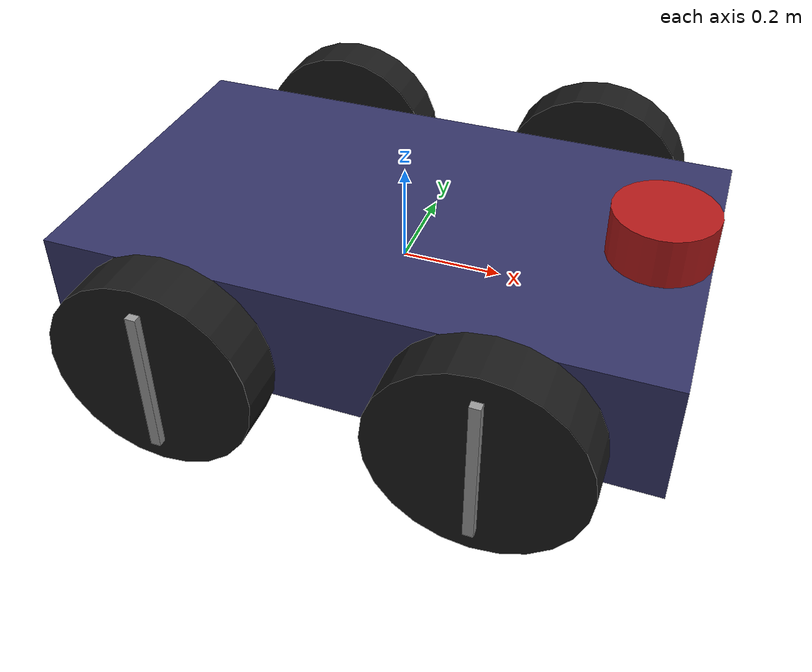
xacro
<?xml version="1.0" ?>
<robot name="robot" xmlns:xacro="http://www.ros.org/wiki/xacro">

    <xacro:include filename="$(find mid_project)/urdf/robot.gazebo" />

    <!-- Parameters -->
    <xacro:property name="chassis_mass" value="10" />
    <xacro:property name="pi" value="3.1415926535897931"/>

    <!-- Link - chassis -->
    <link name="link_chassis">
        <inertial>
            <mass value="${chassis_mass}" />
            <origin xyz="0 0 0.2" rpy="0 0 0" />
            <inertia ixx="1.5417" ixy="0" ixz="0" iyy="3.467" iyz="0" izz="4.742" />
        </inertial>

        <collision>
            <geometry>
                <box size="1.2 0.7 0.25" />
            </geometry>
        </collision>

        <visual>
            <geometry>
                <box size="1.2 0.7 0.25" />
            </geometry>
            <material name="DarkBlue">
                <color rgba="0.2 0.2 0.4 1" />
            </material>
        </visual>
    </link>

    <!-- Joint - caster wheel -->
    <joint name="joint_chassis_caster_wheel" type="fixed">
        <origin rpy="0 0 0" xyz="0.45 0 -0.1" />
        <child link="link_caster_wheel" />
        <parent link="link_chassis" />
        <joint_properties damping="1.0" friction="1.0" />
    </joint>
    <!-- Link - caster wheel -->
    <link name="link_caster_wheel">
        <inertial>
            <mass value="1" />
            <origin xyz="0 0 0" rpy="0 0 0" />
            <inertia ixx="0.002526666666667" ixy="0" ixz="0" iyy="0.002526666666667" iyz="0" izz="0.005"/>
        </inertial>

        <!-- Caster wheel support -->
        <collision>
            <origin rpy="0 0 0" xyz="0 0 -0.05" />
            <geometry>
                <sphere radius="0.05" />
            </geometry>
        </collision>
        <visual>
            <origin rpy="0 0 0" xyz="0 0 -0.05" />
            <geometry>
                <sphere radius="0.05" />
            </geometry>
            <material name="DarkBlue">
                <color rgba="0.2 0.2 0.4 1" />
            </material>
        </visual>

        <!-- Caster wheel -->
        <collision>
            <origin rpy="0 0 0" xyz="0 0 -0.09" />
            <geometry>
                <sphere radius="0.02" />
            </geometry>
        </collision>
        <visual>
            <origin rpy="0 0 0" xyz="0 0 -0.09" />
            <geometry>
                <sphere radius="0.02" />
            </geometry>
            <material name="Grey">
                <color rgba="0.6 0.6 0.6 1" />
            </material>
        </visual>
    </link>

    <!-- Joint - chassis / left front wheel -->
    <joint name="joint_chassis_left_front_wheel" type="continuous">
        <origin rpy="0 0 0" xyz="0.3 0.35 0" />
        <child link="link_left_front_wheel" />
        <parent link="link_chassis" />
        <axis rpy="0 0 0" xyz="0 1 0" />
        <limit effort="10000" velocity="1000" />
        <joint_properties damping="1.0" friction="1.0" />
    </joint>
    <!-- Link - left front wheel -->
    <link name="link_left_front_wheel">
        <inertial>
            <mass value="1" />
            <origin xyz="0 0 0" rpy="0 0 0" />
            <inertia ixx="0.002526666666667" ixy="0" ixz="0" iyy="0.002526666666667" iyz="0" izz="0.005"/>
        </inertial>

        <!-- Tires -->
        <collision>
            <origin rpy="${pi/2} 0 0" xyz="0 0.105 0" />
            <geometry>
                <cylinder length="0.1" radius="0.2"/>
            </geometry>
        </collision>
        <visual>
            <origin rpy="${pi/2} 0 0" xyz="0 0.105 0" />
            <geometry>
                <cylinder length="0.1" radius="0.2"/>
            </geometry>
            <material name="Black">
                <color rgba="0.1 0.1 0.1 1" />
            </material>
        </visual>

        <!-- Axle -->
        <collision>
            <origin rpy="${pi/2} 0 0" xyz="0 0.05 0" />
            <geometry>
                <cylinder length="0.1" radius="0.05"/>
            </geometry>
        </collision>
        <visual>
            <origin rpy="${pi/2} 0 0" xyz="0 0.05 0" />
            <geometry>
                <cylinder length="0.1" radius="0.05"/>
            </geometry>
            <material name="Grey">
                <color rgba="0.6 0.6 0.6 1" />
            </material>
        </visual>

        <!-- Hubcap -->
        <visual>
            <origin rpy="${pi/2} 0 0" xyz="0 0.16 0" />
            <geometry>
                <box size="0.02 0.3 0.02" />
            </geometry>
            <material name="Grey">
                <color rgba="0.6 0.6 0.6 1" />
            </material>
        </visual>
    </link>

    <!-- Joint - chassis / left rear wheel -->
    <joint name="joint_chassis_left_rear_wheel" type="continuous">
        <origin rpy="0 0 0" xyz="-0.3 0.35 0" />
        <child link="link_left_rear_wheel" />
        <parent link="link_chassis" />
        <axis rpy="0 0 0" xyz="0 1 0" />
        <limit effort="10000" velocity="1000" />
        <joint_properties damping="1.0" friction="1.0" />
    </joint>
    <!-- Link - left rear wheel -->
    <link name="link_left_rear_wheel">
        <inertial>
            <mass value="1" />
            <origin xyz="0 0 0" rpy="0 0 0" />
            <inertia ixx="0.002526666666667" ixy="0" ixz="0" iyy="0.002526666666667" iyz="0" izz="0.005"/>
        </inertial>

        <!-- Tires -->
        <collision>
            <origin rpy="${pi/2} 0 0" xyz="0 0.105 0" />
            <geometry>
                <cylinder length="0.1" radius="0.2"/>
            </geometry>
        </collision>
        <visual>
            <origin rpy="${pi/2} 0 0" xyz="0 0.105 0" />
            <geometry>
                <cylinder length="0.1" radius="0.2"/>
            </geometry>
            <material name="Black">
                <color rgba="0.1 0.1 0.1 1" />
            </material>
        </visual>

        <!-- Axle -->
        <collision>
            <origin rpy="${pi/2} 0 0" xyz="0 0.05 0" />
            <geometry>
                <cylinder length="0.1" radius="0.05"/>
            </geometry>
        </collision>
        <visual>
            <origin rpy="${pi/2} 0 0" xyz="0 0.05 0" />
            <geometry>
                <cylinder length="0.1" radius="0.05"/>
            </geometry>
            <material name="Grey">
                <color rgba="0.6 0.6 0.6 1" />
            </material>
        </visual>

        <!-- Hubcap -->
        <visual>
            <origin rpy="${pi/2} 0 0" xyz="0 0.16 0" />
            <geometry>
                <box size="0.02 0.3 0.02" />
            </geometry>
            <material name="Grey">
                <color rgba="0.6 0.6 0.6 1" />
            </material>
        </visual>
    </link>

    <!-- Joint - chassis / right front wheel -->
    <joint name="joint_chassis_right_front_wheel" type="continuous">
        <origin rpy="0 0 0" xyz="0.3 -0.35 0" />
        <child link="link_right_front_wheel" />
        <parent link="link_chassis" />
        <axis rpy="0 0 0" xyz="0 1 0" />
        <limit effort="10000" velocity="1000" />
        <joint_properties damping="1.0" friction="1.0" />
    </joint>
    <!-- Link - right front wheel -->
    <link name="link_right_front_wheel">
        <inertial>
            <mass value="1" />
            <origin xyz="0 0 0" rpy="0 0 0" />
            <inertia ixx="0.002526666666667" ixy="0" ixz="0" iyy="0.002526666666667" iyz="0" izz="0.005"/>
        </inertial>

        <!-- Tires -->
        <collision>
            <origin rpy="${pi/2} 0 0" xyz="0 -0.105 0" />
            <geometry>
                <cylinder length="0.1" radius="0.2"/>
            </geometry>
        </collision>
        <visual>
            <origin rpy="${pi/2} 0 0" xyz="0 -0.105 0" />
            <geometry>
                <cylinder length="0.1" radius="0.2"/>
            </geometry>
            <material name="Black">
                <color rgba="0.1 0.1 0.1 1" />
            </material>
        </visual>

        <!-- Axle -->
        <collision>
            <origin rpy="${pi/2} 0 0" xyz="0 -0.05 0" />
            <geometry>
                <cylinder length="0.1" radius="0.05"/>
            </geometry>
        </collision>
        <visual>
            <origin rpy="${pi/2} 0 0" xyz="0 -0.05 0" />
            <geometry>
                <cylinder length="0.1" radius="0.05"/>
            </geometry>
            <material name="Grey">
                <color rgba="0.6 0.6 0.6 1" />
            </material>
        </visual>

        <!-- Hubcap -->
        <visual>
            <origin rpy="${pi/2} 0 0" xyz="0 -0.16 0" />
            <geometry>
                <box size="0.02 0.3 0.02" />
            </geometry>
            <material name="Grey">
                <color rgba="0.6 0.6 0.6 1" />
            </material>
        </visual>
    </link>

    <!-- Joint - chassis / right rear wheel -->
    <joint name="joint_chassis_right_rear_wheel" type="continuous">
        <origin rpy="0 0 0" xyz="-0.3 -0.35 0" />
        <child link="link_right_rear_wheel" />
        <parent link="link_chassis" />
        <axis rpy="0 0 0" xyz="0 1 0" />
        <limit effort="10000" velocity="1000" />
        <joint_properties damping="1.0" friction="1.0" />
    </joint>
    <!-- Link - right rear wheel -->
    <link name="link_right_rear_wheel">
        <inertial>
            <mass value="1" />
            <origin xyz="0 0 0" rpy="0 0 0" />
            <inertia ixx="0.002526666666667" ixy="0" ixz="0" iyy="0.002526666666667" iyz="0" izz="0.005"/>
        </inertial>

        <!-- Tires -->
        <collision>
            <origin rpy="${pi/2} 0 0" xyz="0 -0.105 0" />
            <geometry>
                <cylinder length="0.1" radius="0.2"/>
            </geometry>
        </collision>
        <visual>
            <origin rpy="${pi/2} 0 0" xyz="0 -0.105 0" />
            <geometry>
                <cylinder length="0.1" radius="0.2"/>
            </geometry>
            <material name="Black">
                <color rgba="0.1 0.1 0.1 1" />
            </material>
        </visual>

        <!-- Axle -->
        <collision>
            <origin rpy="${pi/2} 0 0" xyz="0 -0.05 0" />
            <geometry>
                <cylinder length="0.1" radius="0.05"/>
            </geometry>
        </collision>
        <visual>
            <origin rpy="${pi/2} 0 0" xyz="0 -0.05 0" />
            <geometry>
                <cylinder length="0.1" radius="0.05"/>
            </geometry>
            <material name="Grey">
                <color rgba="0.6 0.6 0.6 1" />
            </material>
        </visual>

        <!-- Hubcap -->
        <visual>
            <origin rpy="${pi/2} 0 0" xyz="0 -0.16 0" />
            <geometry>
                <box size="0.02 0.3 0.02" />
            </geometry>
            <material name="Grey">
                <color rgba="0.6 0.6 0.6 1" />
            </material>
        </visual>
    </link>

    <!-- Laser scan -->
    <joint name="joint_laser_scan_chassis" type="fixed">
        <origin rpy="0 0 0" xyz="0.5 0 0.175" />
        <child link="link_laser_scan" />
        <parent link="link_chassis" />
        <joint_properties damping="1.0" friction="1.0" />
    </joint>
    <link name="link_laser_scan">
        <inertial>
            <origin xyz="0 0 0" rpy="0 0 0" />
            <mass value="0.5" />
            <inertia ixx="0.000252666666667" ixy="0" ixz="0" iyy="0.000252666666667" iyz="0" izz="0.0005"/>
        </inertial>
        <visual>
            <origin xyz="0 0 0" rpy="0 0 0" />
            <geometry>
                <cylinder radius="0.1" length="0.1"/>
            </geometry>
            <material name="Red">
                <color rgba="0.7 0.1 0.1 1" />
            </material>
        </visual>
        <collision>
            <origin xyz="0 0 0" rpy="0 0 0"/>
            <geometry>
                <cylinder radius="0.1" length="0.1"/>
            </geometry>
        </collision>
    </link>
</robot>
